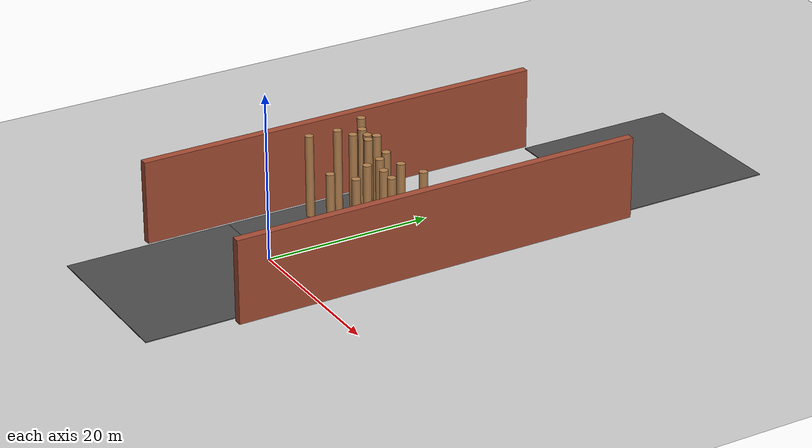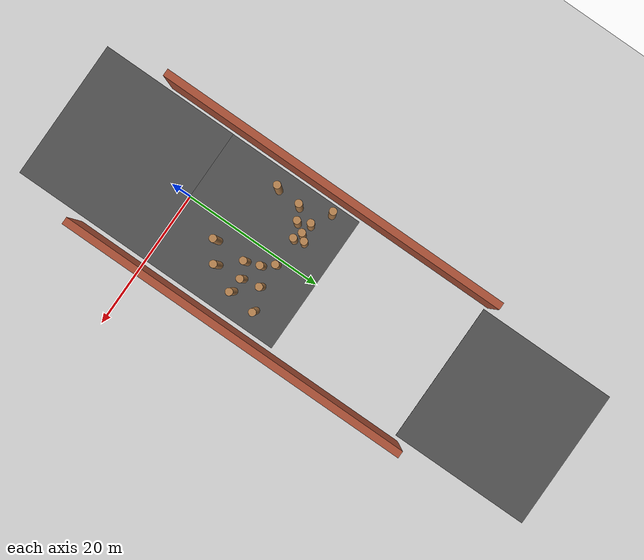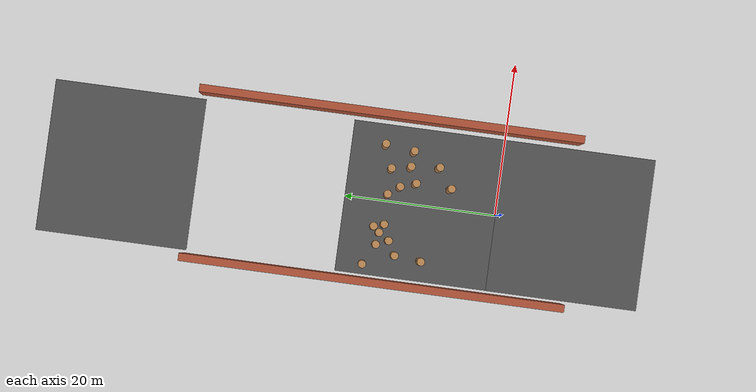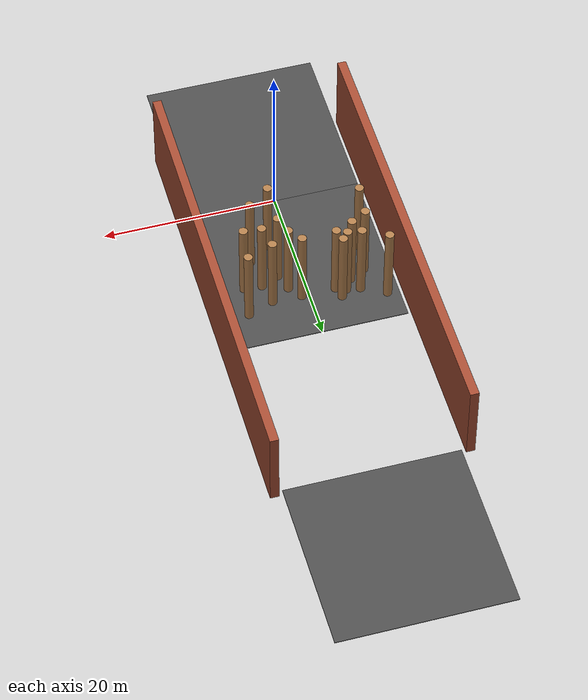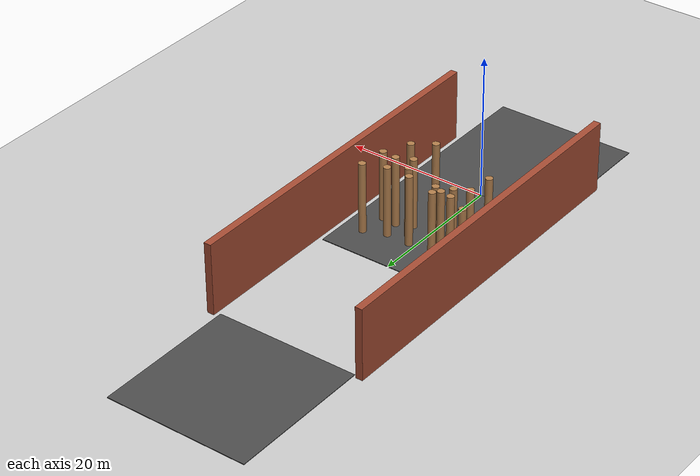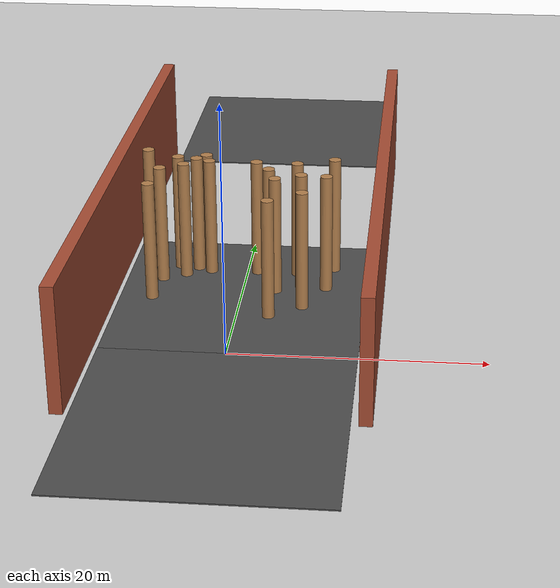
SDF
<sdf version="1.6">
 <world name="default">
  <model name="ground_plane">
   <static>1</static>
   <link name="link">
    <collision name="collision">
     <geometry><plane><normal>0 0 1</normal><size>100 100</size></plane></geometry>
     <surface><friction><ode><mu>100</mu><mu2>50</mu2></ode></friction></surface>
    </collision>
    <visual name="visual">
     <cast_shadows>0</cast_shadows>
     <geometry><plane><normal>0 0 1</normal><size>100 100</size></plane></geometry>
     <material>
      <script><uri>file://media/materials/scripts/gazebo.material</uri><name>Gazebo/Grey</name></script>
     </material>
    </visual>
   </link>
  </model>
  <model name="asphalt_plane_1">
   <static>1</static>
   <link name="link">
    <collision name="collision"><geometry><box><size>20 20 0.1</size></box></geometry></collision>
    <visual name="visual">
     <cast_shadows>0</cast_shadows>
     <geometry><box><size>20 20 0.1</size></box></geometry>
     <material>
      <script>
       <uri>model://asphalt_plane/materials/scripts</uri>
       <uri>model://asphalt_plane/materials/textures</uri>
       <name>vrc/asphalt</name>
      </script>
     </material>
    </visual>
   </link>
   <pose>0.098004 9.97829 0 0 -0 0</pose>
  </model>
  <model name="asphalt_plane_3">
   <static>1</static>
   <link name="link">
    <collision name="collision"><geometry><box><size>20 20 0.1</size></box></geometry></collision>
    <visual name="visual">
     <cast_shadows>0</cast_shadows>
     <geometry><box><size>20 20 0.1</size></box></geometry>
     <material>
      <script>
       <uri>model://asphalt_plane/materials/scripts</uri>
       <uri>model://asphalt_plane/materials/textures</uri>
       <name>vrc/asphalt</name>
      </script>
     </material>
    </visual>
   </link>
   <pose>0.085062 -9.98607 0 0 -0 0</pose>
  </model>
  <model name="test_1">
   <link name="link_0_clone_0_clone_5_clone_12_clone_0">
    <pose>-5.63702 -1.67107 0.043478 0 -0 6e-06</pose>
    <inertial>
     <mass>1000</mass>
     <inertia><ixx>0.145833</ixx><ixy>0</ixy><ixz>0</ixz><iyy>0.145833</iyy><iyz>0</iyz><izz>0.125</izz></inertia>
    </inertial>
    <visual name="visual">
     <pose>0 0 4.5 0 -0 0</pose>
     <geometry><cylinder><radius>0.5</radius><length>10</length></cylinder></geometry>
     <material>
      <lighting>1</lighting>
      <script><uri>file://media/materials/scripts/gazebo.material</uri><name>Gazebo/WoodFloor</name></script>
      <ambient>0.3 0.3 0.3 1</ambient>
      <diffuse>0.7 0.7 0.7 1</diffuse>
      <specular>0.01 0.01 0.01 1</specular>
      <emissive>0 0 0 1</emissive>
      <shader type="vertex"><normal_map>__default__</normal_map></shader>
     </material>
    </visual>
    <collision name="collision">
     <pose>0 0 4.5 0 -0 0</pose>
     <geometry><cylinder><radius>0.5</radius><length>10</length></cylinder></geometry>
     <surface>
      <friction>
       <ode><mu>1</mu><mu2>1</mu2><fdir1>0 0 0</fdir1><slip1>0</slip1><slip2>0</slip2></ode>
       <torsional>
        <coefficient>1</coefficient>
        <patch_radius>0</patch_radius>
        <surface_radius>0</surface_radius>
        <use_patch_radius>1</use_patch_radius>
        <ode><slip>0</slip></ode>
       </torsional>
      </friction>
      <bounce><restitution_coefficient>0</restitution_coefficient><threshold>1e+06</threshold></bounce>
      <contact>
       <collide_without_contact>0</collide_without_contact>
       <collide_without_contact_bitmask>1</collide_without_contact_bitmask>
       <collide_bitmask>1</collide_bitmask>
       <ode>
        <soft_cfm>0</soft_cfm>
        <soft_erp>0.2</soft_erp>
        <kp>1e+13</kp>
        <kd>1</kd>
        <max_vel>0.01</max_vel>
        <min_depth>0</min_depth>
       </ode>
       <bullet>
        <split_impulse>1</split_impulse>
        <split_impulse_penetration_threshold>-0.01</split_impulse_penetration_threshold>
        <soft_cfm>0</soft_cfm>
        <soft_erp>0.2</soft_erp>
        <kp>1e+13</kp>
        <kd>1</kd>
       </bullet>
      </contact>
     </surface>
    </collision>
   </link>
   <link name="link_0_clone_0_clone_5_clone_12_clone_16">
    <pose>6.39301 -5.99796 0.043478 0 -0 6e-06</pose>
    <inertial>
     <mass>1000</mass>
     <inertia><ixx>0.145833</ixx><ixy>0</ixy><ixz>0</ixz><iyy>0.145833</iyy><iyz>0</iyz><izz>0.125</izz></inertia>
    </inertial>
    <visual name="visual">
     <pose>0 0 4.5 0 -0 0</pose>
     <geometry><cylinder><radius>0.5</radius><length>10</length></cylinder></geometry>
     <material>
      <lighting>1</lighting>
      <script><uri>file://media/materials/scripts/gazebo.material</uri><name>Gazebo/WoodFloor</name></script>
      <ambient>0.3 0.3 0.3 1</ambient>
      <diffuse>0.7 0.7 0.7 1</diffuse>
      <specular>0.01 0.01 0.01 1</specular>
      <emissive>0 0 0 1</emissive>
      <shader type="vertex"><normal_map>__default__</normal_map></shader>
     </material>
    </visual>
    <collision name="collision">
     <pose>0 0 4.5 0 -0 0</pose>
     <geometry><cylinder><radius>0.5</radius><length>10</length></cylinder></geometry>
     <surface>
      <friction>
       <ode><mu>1</mu><mu2>1</mu2><fdir1>0 0 0</fdir1><slip1>0</slip1><slip2>0</slip2></ode>
       <torsional>
        <coefficient>1</coefficient>
        <patch_radius>0</patch_radius>
        <surface_radius>0</surface_radius>
        <use_patch_radius>1</use_patch_radius>
        <ode><slip>0</slip></ode>
       </torsional>
      </friction>
      <bounce><restitution_coefficient>0</restitution_coefficient><threshold>1e+06</threshold></bounce>
      <contact>
       <collide_without_contact>0</collide_without_contact>
       <collide_without_contact_bitmask>1</collide_without_contact_bitmask>
       <collide_bitmask>1</collide_bitmask>
       <ode>
        <soft_cfm>0</soft_cfm>
        <soft_erp>0.2</soft_erp>
        <kp>1e+13</kp>
        <kd>1</kd>
        <max_vel>0.01</max_vel>
        <min_depth>0</min_depth>
       </ode>
       <bullet>
        <split_impulse>1</split_impulse>
        <split_impulse_penetration_threshold>-0.01</split_impulse_penetration_threshold>
        <soft_cfm>0</soft_cfm>
        <soft_erp>0.2</soft_erp>
        <kp>1e+13</kp>
        <kd>1</kd>
       </bullet>
      </contact>
     </surface>
    </collision>
   </link>
   <link name="link_0_clone_0_clone_5_clone_12_clone_17">
    <pose>3.84972 -7.82037 0.043478 0 -0 6e-06</pose>
    <inertial>
     <mass>1000</mass>
     <inertia><ixx>0.145833</ixx><ixy>0</ixy><ixz>0</ixz><iyy>0.145833</iyy><iyz>0</iyz><izz>0.125</izz></inertia>
    </inertial>
    <visual name="visual">
     <pose>0 0 4.5 0 -0 0</pose>
     <geometry><cylinder><radius>0.5</radius><length>10</length></cylinder></geometry>
     <material>
      <lighting>1</lighting>
      <script><uri>file://media/materials/scripts/gazebo.material</uri><name>Gazebo/WoodFloor</name></script>
      <ambient>0.3 0.3 0.3 1</ambient>
      <diffuse>0.7 0.7 0.7 1</diffuse>
      <specular>0.01 0.01 0.01 1</specular>
      <emissive>0 0 0 1</emissive>
      <shader type="vertex"><normal_map>__default__</normal_map></shader>
     </material>
    </visual>
    <collision name="collision">
     <pose>0 0 4.5 0 -0 0</pose>
     <geometry><cylinder><radius>0.5</radius><length>10</length></cylinder></geometry>
     <surface>
      <friction>
       <ode><mu>1</mu><mu2>1</mu2><fdir1>0 0 0</fdir1><slip1>0</slip1><slip2>0</slip2></ode>
       <torsional>
        <coefficient>1</coefficient>
        <patch_radius>0</patch_radius>
        <surface_radius>0</surface_radius>
        <use_patch_radius>1</use_patch_radius>
        <ode><slip>0</slip></ode>
       </torsional>
      </friction>
      <bounce><restitution_coefficient>0</restitution_coefficient><threshold>1e+06</threshold></bounce>
      <contact>
       <collide_without_contact>0</collide_without_contact>
       <collide_without_contact_bitmask>1</collide_without_contact_bitmask>
       <collide_bitmask>1</collide_bitmask>
       <ode>
        <soft_cfm>0</soft_cfm>
        <soft_erp>0.2</soft_erp>
        <kp>1e+13</kp>
        <kd>1</kd>
        <max_vel>0.01</max_vel>
        <min_depth>0</min_depth>
       </ode>
       <bullet>
        <split_impulse>1</split_impulse>
        <split_impulse_penetration_threshold>-0.01</split_impulse_penetration_threshold>
        <soft_cfm>0</soft_cfm>
        <soft_erp>0.2</soft_erp>
        <kp>1e+13</kp>
        <kd>1</kd>
       </bullet>
      </contact>
     </surface>
    </collision>
   </link>
   <link name="link_0_clone_0_clone_5_clone_12_clone_2">
    <pose>5.48812 0.177483 0.043478 0 -0 6e-06</pose>
    <inertial>
     <mass>1000</mass>
     <inertia><ixx>0.145833</ixx><ixy>0</ixy><ixz>0</ixz><iyy>0.145833</iyy><iyz>0</iyz><izz>0.125</izz></inertia>
    </inertial>
    <visual name="visual">
     <pose>0 0 4.5 0 -0 0</pose>
     <geometry><cylinder><radius>0.5</radius><length>10</length></cylinder></geometry>
     <material>
      <lighting>1</lighting>
      <script><uri>file://media/materials/scripts/gazebo.material</uri><name>Gazebo/WoodFloor</name></script>
      <ambient>0.3 0.3 0.3 1</ambient>
      <diffuse>0.7 0.7 0.7 1</diffuse>
      <specular>0.01 0.01 0.01 1</specular>
      <emissive>0 0 0 1</emissive>
      <shader type="vertex"><normal_map>__default__</normal_map></shader>
     </material>
    </visual>
    <collision name="collision">
     <pose>0 0 4.5 0 -0 0</pose>
     <geometry><cylinder><radius>0.5</radius><length>10</length></cylinder></geometry>
     <surface>
      <friction>
       <ode><mu>1</mu><mu2>1</mu2><fdir1>0 0 0</fdir1><slip1>0</slip1><slip2>0</slip2></ode>
       <torsional>
        <coefficient>1</coefficient>
        <patch_radius>0</patch_radius>
        <surface_radius>0</surface_radius>
        <use_patch_radius>1</use_patch_radius>
        <ode><slip>0</slip></ode>
       </torsional>
      </friction>
      <bounce><restitution_coefficient>0</restitution_coefficient><threshold>1e+06</threshold></bounce>
      <contact>
       <collide_without_contact>0</collide_without_contact>
       <collide_without_contact_bitmask>1</collide_without_contact_bitmask>
       <collide_bitmask>1</collide_bitmask>
       <ode>
        <soft_cfm>0</soft_cfm>
        <soft_erp>0.2</soft_erp>
        <kp>1e+13</kp>
        <kd>1</kd>
        <max_vel>0.01</max_vel>
        <min_depth>0</min_depth>
       </ode>
       <bullet>
        <split_impulse>1</split_impulse>
        <split_impulse_penetration_threshold>-0.01</split_impulse_penetration_threshold>
        <soft_cfm>0</soft_cfm>
        <soft_erp>0.2</soft_erp>
        <kp>1e+13</kp>
        <kd>1</kd>
       </bullet>
      </contact>
     </surface>
    </collision>
   </link>
   <link name="link_0_clone_0_clone_5_clone_12_clone_4">
    <pose>2.11592 0.24078 0.043478 0 -0 6e-06</pose>
    <inertial>
     <mass>1000</mass>
     <inertia><ixx>0.145833</ixx><ixy>0</ixy><ixz>0</ixz><iyy>0.145833</iyy><iyz>0</iyz><izz>0.125</izz></inertia>
    </inertial>
    <visual name="visual">
     <pose>0 0 4.5 0 -0 0</pose>
     <geometry><cylinder><radius>0.5</radius><length>10</length></cylinder></geometry>
     <material>
      <lighting>1</lighting>
      <script><uri>file://media/materials/scripts/gazebo.material</uri><name>Gazebo/WoodFloor</name></script>
      <ambient>0.3 0.3 0.3 1</ambient>
      <diffuse>0.7 0.7 0.7 1</diffuse>
      <specular>0.01 0.01 0.01 1</specular>
      <emissive>0 0 0 1</emissive>
      <shader type="vertex"><normal_map>__default__</normal_map></shader>
     </material>
    </visual>
    <collision name="collision">
     <pose>0 0 4.5 0 -0 0</pose>
     <geometry><cylinder><radius>0.5</radius><length>10</length></cylinder></geometry>
     <surface>
      <friction>
       <ode><mu>1</mu><mu2>1</mu2><fdir1>0 0 0</fdir1><slip1>0</slip1><slip2>0</slip2></ode>
       <torsional>
        <coefficient>1</coefficient>
        <patch_radius>0</patch_radius>
        <surface_radius>0</surface_radius>
        <use_patch_radius>1</use_patch_radius>
        <ode><slip>0</slip></ode>
       </torsional>
      </friction>
      <bounce><restitution_coefficient>0</restitution_coefficient><threshold>1e+06</threshold></bounce>
      <contact>
       <collide_without_contact>0</collide_without_contact>
       <collide_without_contact_bitmask>1</collide_without_contact_bitmask>
       <collide_bitmask>1</collide_bitmask>
       <ode>
        <soft_cfm>0</soft_cfm>
        <soft_erp>0.2</soft_erp>
        <kp>1e+13</kp>
        <kd>1</kd>
        <max_vel>0.01</max_vel>
        <min_depth>0</min_depth>
       </ode>
       <bullet>
        <split_impulse>1</split_impulse>
        <split_impulse_penetration_threshold>-0.01</split_impulse_penetration_threshold>
        <soft_cfm>0</soft_cfm>
        <soft_erp>0.2</soft_erp>
        <kp>1e+13</kp>
        <kd>1</kd>
       </bullet>
      </contact>
     </surface>
    </collision>
   </link>
   <link name="link_0_clone_0_clone_5_clone_12_clone_4_clone">
    <pose>-4.51817 0.912331 0.043478 0 -0 9e-06</pose>
    <inertial>
     <mass>1000</mass>
     <inertia><ixx>0.145833</ixx><ixy>0</ixy><ixz>0</ixz><iyy>0.145833</iyy><iyz>0</iyz><izz>0.125</izz></inertia>
    </inertial>
    <visual name="visual">
     <pose>0 0 4.5 0 -0 0</pose>
     <geometry><cylinder><radius>0.5</radius><length>10</length></cylinder></geometry>
     <material>
      <lighting>1</lighting>
      <script><uri>file://media/materials/scripts/gazebo.material</uri><name>Gazebo/WoodFloor</name></script>
      <ambient>0.3 0.3 0.3 1</ambient>
      <diffuse>0.7 0.7 0.7 1</diffuse>
      <specular>0.01 0.01 0.01 1</specular>
      <emissive>0 0 0 1</emissive>
      <shader type="vertex"><normal_map>__default__</normal_map></shader>
     </material>
    </visual>
    <collision name="collision">
     <pose>0 0 4.5 0 -0 0</pose>
     <geometry><cylinder><radius>0.5</radius><length>10</length></cylinder></geometry>
     <surface>
      <friction>
       <ode><mu>1</mu><mu2>1</mu2><fdir1>0 0 0</fdir1><slip1>0</slip1><slip2>0</slip2></ode>
       <torsional>
        <coefficient>1</coefficient>
        <patch_radius>0</patch_radius>
        <surface_radius>0</surface_radius>
        <use_patch_radius>1</use_patch_radius>
        <ode><slip>0</slip></ode>
       </torsional>
      </friction>
      <bounce><restitution_coefficient>0</restitution_coefficient><threshold>1e+06</threshold></bounce>
      <contact>
       <collide_without_contact>0</collide_without_contact>
       <collide_without_contact_bitmask>1</collide_without_contact_bitmask>
       <collide_bitmask>1</collide_bitmask>
       <ode>
        <soft_cfm>0</soft_cfm>
        <soft_erp>0.2</soft_erp>
        <kp>1e+13</kp>
        <kd>1</kd>
        <max_vel>0.01</max_vel>
        <min_depth>0</min_depth>
       </ode>
       <bullet>
        <split_impulse>1</split_impulse>
        <split_impulse_penetration_threshold>-0.01</split_impulse_penetration_threshold>
        <soft_cfm>0</soft_cfm>
        <soft_erp>0.2</soft_erp>
        <kp>1e+13</kp>
        <kd>1</kd>
       </bullet>
      </contact>
     </surface>
    </collision>
   </link>
   <link name="link_0_clone_0_clone_5_clone_12_clone_4_clone_0">
    <pose>-2.93633 0.683647 0.043478 0 -0 9e-06</pose>
    <inertial>
     <mass>1000</mass>
     <inertia><ixx>0.145833</ixx><ixy>0</ixy><ixz>0</ixz><iyy>0.145833</iyy><iyz>0</iyz><izz>0.125</izz></inertia>
    </inertial>
    <visual name="visual">
     <pose>0 0 4.5 0 -0 0</pose>
     <geometry><cylinder><radius>0.5</radius><length>10</length></cylinder></geometry>
     <material>
      <lighting>1</lighting>
      <script><uri>file://media/materials/scripts/gazebo.material</uri><name>Gazebo/WoodFloor</name></script>
      <ambient>0.3 0.3 0.3 1</ambient>
      <diffuse>0.7 0.7 0.7 1</diffuse>
      <specular>0.01 0.01 0.01 1</specular>
      <emissive>0 0 0 1</emissive>
      <shader type="vertex"><normal_map>__default__</normal_map></shader>
     </material>
    </visual>
    <collision name="collision">
     <pose>0 0 4.5 0 -0 0</pose>
     <geometry><cylinder><radius>0.5</radius><length>10</length></cylinder></geometry>
     <surface>
      <friction>
       <ode><mu>1</mu><mu2>1</mu2><fdir1>0 0 0</fdir1><slip1>0</slip1><slip2>0</slip2></ode>
       <torsional>
        <coefficient>1</coefficient>
        <patch_radius>0</patch_radius>
        <surface_radius>0</surface_radius>
        <use_patch_radius>1</use_patch_radius>
        <ode><slip>0</slip></ode>
       </torsional>
      </friction>
      <bounce><restitution_coefficient>0</restitution_coefficient><threshold>1e+06</threshold></bounce>
      <contact>
       <collide_without_contact>0</collide_without_contact>
       <collide_without_contact_bitmask>1</collide_without_contact_bitmask>
       <collide_bitmask>1</collide_bitmask>
       <ode>
        <soft_cfm>0</soft_cfm>
        <soft_erp>0.2</soft_erp>
        <kp>1e+13</kp>
        <kd>1</kd>
        <max_vel>0.01</max_vel>
        <min_depth>0</min_depth>
       </ode>
       <bullet>
        <split_impulse>1</split_impulse>
        <split_impulse_penetration_threshold>-0.01</split_impulse_penetration_threshold>
        <soft_cfm>0</soft_cfm>
        <soft_erp>0.2</soft_erp>
        <kp>1e+13</kp>
        <kd>1</kd>
       </bullet>
      </contact>
     </surface>
    </collision>
   </link>
   <link name="link_0_clone_0_clone_5_clone_12_clone_4_clone_1">
    <pose>-3.82497 -0.669509 0.043478 0 -0 9e-06</pose>
    <inertial>
     <mass>1000</mass>
     <inertia><ixx>0.145833</ixx><ixy>0</ixy><ixz>0</ixz><iyy>0.145833</iyy><iyz>0</iyz><izz>0.125</izz></inertia>
    </inertial>
    <visual name="visual">
     <pose>0 0 4.5 0 -0 0</pose>
     <geometry><cylinder><radius>0.5</radius><length>10</length></cylinder></geometry>
     <material>
      <lighting>1</lighting>
      <script><uri>file://media/materials/scripts/gazebo.material</uri><name>Gazebo/WoodFloor</name></script>
      <ambient>0.3 0.3 0.3 1</ambient>
      <diffuse>0.7 0.7 0.7 1</diffuse>
      <specular>0.01 0.01 0.01 1</specular>
      <emissive>0 0 0 1</emissive>
      <shader type="vertex"><normal_map>__default__</normal_map></shader>
     </material>
    </visual>
    <collision name="collision">
     <pose>0 0 4.5 0 -0 0</pose>
     <geometry><cylinder><radius>0.5</radius><length>10</length></cylinder></geometry>
     <surface>
      <friction>
       <ode><mu>1</mu><mu2>1</mu2><fdir1>0 0 0</fdir1><slip1>0</slip1><slip2>0</slip2></ode>
       <torsional>
        <coefficient>1</coefficient>
        <patch_radius>0</patch_radius>
        <surface_radius>0</surface_radius>
        <use_patch_radius>1</use_patch_radius>
        <ode><slip>0</slip></ode>
       </torsional>
      </friction>
      <bounce><restitution_coefficient>0</restitution_coefficient><threshold>1e+06</threshold></bounce>
      <contact>
       <collide_without_contact>0</collide_without_contact>
       <collide_without_contact_bitmask>1</collide_without_contact_bitmask>
       <collide_bitmask>1</collide_bitmask>
       <ode>
        <soft_cfm>0</soft_cfm>
        <soft_erp>0.2</soft_erp>
        <kp>1e+13</kp>
        <kd>1</kd>
        <max_vel>0.01</max_vel>
        <min_depth>0</min_depth>
       </ode>
       <bullet>
        <split_impulse>1</split_impulse>
        <split_impulse_penetration_threshold>-0.01</split_impulse_penetration_threshold>
        <soft_cfm>0</soft_cfm>
        <soft_erp>0.2</soft_erp>
        <kp>1e+13</kp>
        <kd>1</kd>
       </bullet>
      </contact>
     </surface>
    </collision>
   </link>
   <link name="link_0_clone_0_clone_5_clone_12_clone_4_clone_2">
    <pose>-2.20736 1.49494 0.043478 0 -0 9e-06</pose>
    <inertial>
     <mass>1000</mass>
     <inertia><ixx>0.145833</ixx><ixy>0</ixy><ixz>0</ixz><iyy>0.145833</iyy><iyz>0</iyz><izz>0.125</izz></inertia>
    </inertial>
    <visual name="visual">
     <pose>0 0 4.5 0 -0 0</pose>
     <geometry><cylinder><radius>0.5</radius><length>10</length></cylinder></geometry>
     <material>
      <lighting>1</lighting>
      <script><uri>file://media/materials/scripts/gazebo.material</uri><name>Gazebo/WoodFloor</name></script>
      <ambient>0.3 0.3 0.3 1</ambient>
      <diffuse>0.7 0.7 0.7 1</diffuse>
      <specular>0.01 0.01 0.01 1</specular>
      <emissive>0 0 0 1</emissive>
      <shader type="vertex"><normal_map>__default__</normal_map></shader>
     </material>
    </visual>
    <collision name="collision">
     <pose>0 0 4.5 0 -0 0</pose>
     <geometry><cylinder><radius>0.5</radius><length>10</length></cylinder></geometry>
     <surface>
      <friction>
       <ode><mu>1</mu><mu2>1</mu2><fdir1>0 0 0</fdir1><slip1>0</slip1><slip2>0</slip2></ode>
       <torsional>
        <coefficient>1</coefficient>
        <patch_radius>0</patch_radius>
        <surface_radius>0</surface_radius>
        <use_patch_radius>1</use_patch_radius>
        <ode><slip>0</slip></ode>
       </torsional>
      </friction>
      <bounce><restitution_coefficient>0</restitution_coefficient><threshold>1e+06</threshold></bounce>
      <contact>
       <collide_without_contact>0</collide_without_contact>
       <collide_without_contact_bitmask>1</collide_without_contact_bitmask>
       <collide_bitmask>1</collide_bitmask>
       <ode>
        <soft_cfm>0</soft_cfm>
        <soft_erp>0.2</soft_erp>
        <kp>1e+13</kp>
        <kd>1</kd>
        <max_vel>0.01</max_vel>
        <min_depth>0</min_depth>
       </ode>
       <bullet>
        <split_impulse>1</split_impulse>
        <split_impulse_penetration_threshold>-0.01</split_impulse_penetration_threshold>
        <soft_cfm>0</soft_cfm>
        <soft_erp>0.2</soft_erp>
        <kp>1e+13</kp>
        <kd>1</kd>
       </bullet>
      </contact>
     </surface>
    </collision>
   </link>
   <link name="link_0_clone_0_clone_5_clone_12_clone_4_clone_22">
    <pose>6.01743 -2.30899 0.043478 0 -0 9e-06</pose>
    <inertial>
     <mass>1000</mass>
     <inertia><ixx>0.145833</ixx><ixy>0</ixy><ixz>0</ixz><iyy>0.145833</iyy><iyz>0</iyz><izz>0.125</izz></inertia>
    </inertial>
    <visual name="visual">
     <pose>0 0 4.5 0 -0 0</pose>
     <geometry><cylinder><radius>0.5</radius><length>10</length></cylinder></geometry>
     <material>
      <lighting>1</lighting>
      <script><uri>file://media/materials/scripts/gazebo.material</uri><name>Gazebo/WoodFloor</name></script>
      <ambient>0.3 0.3 0.3 1</ambient>
      <diffuse>0.7 0.7 0.7 1</diffuse>
      <specular>0.01 0.01 0.01 1</specular>
      <emissive>0 0 0 1</emissive>
      <shader type="vertex"><normal_map>__default__</normal_map></shader>
     </material>
    </visual>
    <collision name="collision">
     <pose>0 0 4.5 0 -0 0</pose>
     <geometry><cylinder><radius>0.5</radius><length>10</length></cylinder></geometry>
     <surface>
      <friction>
       <ode><mu>1</mu><mu2>1</mu2><fdir1>0 0 0</fdir1><slip1>0</slip1><slip2>0</slip2></ode>
       <torsional>
        <coefficient>1</coefficient>
        <patch_radius>0</patch_radius>
        <surface_radius>0</surface_radius>
        <use_patch_radius>1</use_patch_radius>
        <ode><slip>0</slip></ode>
       </torsional>
      </friction>
      <bounce><restitution_coefficient>0</restitution_coefficient><threshold>1e+06</threshold></bounce>
      <contact>
       <collide_without_contact>0</collide_without_contact>
       <collide_without_contact_bitmask>1</collide_without_contact_bitmask>
       <collide_bitmask>1</collide_bitmask>
       <ode>
        <soft_cfm>0</soft_cfm>
        <soft_erp>0.2</soft_erp>
        <kp>1e+13</kp>
        <kd>1</kd>
        <max_vel>0.01</max_vel>
        <min_depth>0</min_depth>
       </ode>
       <bullet>
        <split_impulse>1</split_impulse>
        <split_impulse_penetration_threshold>-0.01</split_impulse_penetration_threshold>
        <soft_cfm>0</soft_cfm>
        <soft_erp>0.2</soft_erp>
        <kp>1e+13</kp>
        <kd>1</kd>
       </bullet>
      </contact>
     </surface>
    </collision>
   </link>
   <link name="link_0_clone_0_clone_5_clone_12_clone_4_clone_3">
    <pose>-1.80276 0.177998 0.043478 0 -0 9e-06</pose>
    <inertial>
     <mass>1000</mass>
     <inertia><ixx>0.145833</ixx><ixy>0</ixy><ixz>0</ixz><iyy>0.145833</iyy><iyz>0</iyz><izz>0.125</izz></inertia>
    </inertial>
    <visual name="visual">
     <pose>0 0 4.5 0 -0 0</pose>
     <geometry><cylinder><radius>0.5</radius><length>10</length></cylinder></geometry>
     <material>
      <lighting>1</lighting>
      <script><uri>file://media/materials/scripts/gazebo.material</uri><name>Gazebo/WoodFloor</name></script>
      <ambient>0.3 0.3 0.3 1</ambient>
      <diffuse>0.7 0.7 0.7 1</diffuse>
      <specular>0.01 0.01 0.01 1</specular>
      <emissive>0 0 0 1</emissive>
      <shader type="vertex"><normal_map>__default__</normal_map></shader>
     </material>
    </visual>
    <collision name="collision">
     <pose>0 0 4.5 0 -0 0</pose>
     <geometry><cylinder><radius>0.5</radius><length>10</length></cylinder></geometry>
     <surface>
      <friction>
       <ode><mu>1</mu><mu2>1</mu2><fdir1>0 0 0</fdir1><slip1>0</slip1><slip2>0</slip2></ode>
       <torsional>
        <coefficient>1</coefficient>
        <patch_radius>0</patch_radius>
        <surface_radius>0</surface_radius>
        <use_patch_radius>1</use_patch_radius>
        <ode><slip>0</slip></ode>
       </torsional>
      </friction>
      <bounce><restitution_coefficient>0</restitution_coefficient><threshold>1e+06</threshold></bounce>
      <contact>
       <collide_without_contact>0</collide_without_contact>
       <collide_without_contact_bitmask>1</collide_without_contact_bitmask>
       <collide_bitmask>1</collide_bitmask>
       <ode>
        <soft_cfm>0</soft_cfm>
        <soft_erp>0.2</soft_erp>
        <kp>1e+13</kp>
        <kd>1</kd>
        <max_vel>0.01</max_vel>
        <min_depth>0</min_depth>
       </ode>
       <bullet>
        <split_impulse>1</split_impulse>
        <split_impulse_penetration_threshold>-0.01</split_impulse_penetration_threshold>
        <soft_cfm>0</soft_cfm>
        <soft_erp>0.2</soft_erp>
        <kp>1e+13</kp>
        <kd>1</kd>
       </bullet>
      </contact>
     </surface>
    </collision>
   </link>
   <link name="link_0_clone_0_clone_5_clone_12_clone_4_clone_4">
    <pose>3.27394 -1.24679 0.043478 0 -0 9e-06</pose>
    <inertial>
     <mass>1000</mass>
     <inertia><ixx>0.145833</ixx><ixy>0</ixy><ixz>0</ixz><iyy>0.145833</iyy><iyz>0</iyz><izz>0.125</izz></inertia>
    </inertial>
    <visual name="visual">
     <pose>0 0 4.5 0 -0 0</pose>
     <geometry><cylinder><radius>0.5</radius><length>10</length></cylinder></geometry>
     <material>
      <lighting>1</lighting>
      <script><uri>file://media/materials/scripts/gazebo.material</uri><name>Gazebo/WoodFloor</name></script>
      <ambient>0.3 0.3 0.3 1</ambient>
      <diffuse>0.7 0.7 0.7 1</diffuse>
      <specular>0.01 0.01 0.01 1</specular>
      <emissive>0 0 0 1</emissive>
      <shader type="vertex"><normal_map>__default__</normal_map></shader>
     </material>
    </visual>
    <collision name="collision">
     <pose>0 0 4.5 0 -0 0</pose>
     <geometry><cylinder><radius>0.5</radius><length>10</length></cylinder></geometry>
     <surface>
      <friction>
       <ode><mu>1</mu><mu2>1</mu2><fdir1>0 0 0</fdir1><slip1>0</slip1><slip2>0</slip2></ode>
       <torsional>
        <coefficient>1</coefficient>
        <patch_radius>0</patch_radius>
        <surface_radius>0</surface_radius>
        <use_patch_radius>1</use_patch_radius>
        <ode><slip>0</slip></ode>
       </torsional>
      </friction>
      <bounce><restitution_coefficient>0</restitution_coefficient><threshold>1e+06</threshold></bounce>
      <contact>
       <collide_without_contact>0</collide_without_contact>
       <collide_without_contact_bitmask>1</collide_without_contact_bitmask>
       <collide_bitmask>1</collide_bitmask>
       <ode>
        <soft_cfm>0</soft_cfm>
        <soft_erp>0.2</soft_erp>
        <kp>1e+13</kp>
        <kd>1</kd>
        <max_vel>0.01</max_vel>
        <min_depth>0</min_depth>
       </ode>
       <bullet>
        <split_impulse>1</split_impulse>
        <split_impulse_penetration_threshold>-0.01</split_impulse_penetration_threshold>
        <soft_cfm>0</soft_cfm>
        <soft_erp>0.2</soft_erp>
        <kp>1e+13</kp>
        <kd>1</kd>
       </bullet>
      </contact>
     </surface>
    </collision>
   </link>
   <link name="link_0_clone_0_clone_5_clone_12_clone_4_clone_9">
    <pose>-7.2512 2.32349 0.043478 0 -0 9e-06</pose>
    <inertial>
     <mass>1000</mass>
     <inertia><ixx>0.145833</ixx><ixy>0</ixy><ixz>0</ixz><iyy>0.145833</iyy><iyz>0</iyz><izz>0.125</izz></inertia>
    </inertial>
    <visual name="visual">
     <pose>0 0 4.5 0 -0 0</pose>
     <geometry><cylinder><radius>0.5</radius><length>10</length></cylinder></geometry>
     <material>
      <lighting>1</lighting>
      <script><uri>file://media/materials/scripts/gazebo.material</uri><name>Gazebo/WoodFloor</name></script>
      <ambient>0.3 0.3 0.3 1</ambient>
      <diffuse>0.7 0.7 0.7 1</diffuse>
      <specular>0.01 0.01 0.01 1</specular>
      <emissive>0 0 0 1</emissive>
      <shader type="vertex"><normal_map>__default__</normal_map></shader>
     </material>
    </visual>
    <collision name="collision">
     <pose>0 0 4.5 0 -0 0</pose>
     <geometry><cylinder><radius>0.5</radius><length>10</length></cylinder></geometry>
     <surface>
      <friction>
       <ode><mu>1</mu><mu2>1</mu2><fdir1>0 0 0</fdir1><slip1>0</slip1><slip2>0</slip2></ode>
       <torsional>
        <coefficient>1</coefficient>
        <patch_radius>0</patch_radius>
        <surface_radius>0</surface_radius>
        <use_patch_radius>1</use_patch_radius>
        <ode><slip>0</slip></ode>
       </torsional>
      </friction>
      <bounce><restitution_coefficient>0</restitution_coefficient><threshold>1e+06</threshold></bounce>
      <contact>
       <collide_without_contact>0</collide_without_contact>
       <collide_without_contact_bitmask>1</collide_without_contact_bitmask>
       <collide_bitmask>1</collide_bitmask>
       <ode>
        <soft_cfm>0</soft_cfm>
        <soft_erp>0.2</soft_erp>
        <kp>1e+13</kp>
        <kd>1</kd>
        <max_vel>0.01</max_vel>
        <min_depth>0</min_depth>
       </ode>
       <bullet>
        <split_impulse>1</split_impulse>
        <split_impulse_penetration_threshold>-0.01</split_impulse_penetration_threshold>
        <soft_cfm>0</soft_cfm>
        <soft_erp>0.2</soft_erp>
        <kp>1e+13</kp>
        <kd>1</kd>
       </bullet>
      </contact>
     </surface>
    </collision>
   </link>
   <link name="link_0_clone_0_clone_5_clone_19_clone_24">
    <pose>-5.97869 -5.13561 0.043478 0 -0 6e-06</pose>
    <inertial>
     <mass>1000</mass>
     <inertia><ixx>0.145833</ixx><ixy>0</ixy><ixz>0</ixz><iyy>0.145833</iyy><iyz>0</iyz><izz>0.125</izz></inertia>
    </inertial>
    <visual name="visual">
     <pose>0 0 4.5 0 -0 0</pose>
     <geometry><cylinder><radius>0.5</radius><length>10</length></cylinder></geometry>
     <material>
      <lighting>1</lighting>
      <script><uri>file://media/materials/scripts/gazebo.material</uri><name>Gazebo/WoodFloor</name></script>
      <ambient>0.3 0.3 0.3 1</ambient>
      <diffuse>0.7 0.7 0.7 1</diffuse>
      <specular>0.01 0.01 0.01 1</specular>
      <emissive>0 0 0 1</emissive>
      <shader type="vertex"><normal_map>__default__</normal_map></shader>
     </material>
    </visual>
    <collision name="collision">
     <pose>0 0 4.5 0 -0 0</pose>
     <geometry><cylinder><radius>0.5</radius><length>10</length></cylinder></geometry>
     <surface>
      <friction>
       <ode><mu>1</mu><mu2>1</mu2><fdir1>0 0 0</fdir1><slip1>0</slip1><slip2>0</slip2></ode>
       <torsional>
        <coefficient>1</coefficient>
        <patch_radius>0</patch_radius>
        <surface_radius>0</surface_radius>
        <use_patch_radius>1</use_patch_radius>
        <ode><slip>0</slip></ode>
       </torsional>
      </friction>
      <bounce><restitution_coefficient>0</restitution_coefficient><threshold>1e+06</threshold></bounce>
      <contact>
       <collide_without_contact>0</collide_without_contact>
       <collide_without_contact_bitmask>1</collide_without_contact_bitmask>
       <collide_bitmask>1</collide_bitmask>
       <ode>
        <soft_cfm>0</soft_cfm>
        <soft_erp>0.2</soft_erp>
        <kp>1e+13</kp>
        <kd>1</kd>
        <max_vel>0.01</max_vel>
        <min_depth>0</min_depth>
       </ode>
       <bullet>
        <split_impulse>1</split_impulse>
        <split_impulse_penetration_threshold>-0.01</split_impulse_penetration_threshold>
        <soft_cfm>0</soft_cfm>
        <soft_erp>0.2</soft_erp>
        <kp>1e+13</kp>
        <kd>1</kd>
       </bullet>
      </contact>
     </surface>
    </collision>
   </link>
   <link name="link_0_clone_0_clone_5_clone_19_clone_32">
    <pose>8.50917 1.28403 0.043478 0 -0 6e-06</pose>
    <inertial>
     <mass>1000</mass>
     <inertia><ixx>0.145833</ixx><ixy>0</ixy><ixz>0</ixz><iyy>0.145833</iyy><iyz>0</iyz><izz>0.125</izz></inertia>
    </inertial>
    <visual name="visual">
     <pose>0 0 4.5 0 -0 0</pose>
     <geometry><cylinder><radius>0.5</radius><length>10</length></cylinder></geometry>
     <material>
      <lighting>1</lighting>
      <script><uri>file://media/materials/scripts/gazebo.material</uri><name>Gazebo/WoodFloor</name></script>
      <ambient>0.3 0.3 0.3 1</ambient>
      <diffuse>0.7 0.7 0.7 1</diffuse>
      <specular>0.01 0.01 0.01 1</specular>
      <emissive>0 0 0 1</emissive>
      <shader type="vertex"><normal_map>__default__</normal_map></shader>
     </material>
    </visual>
    <collision name="collision">
     <pose>0 0 4.5 0 -0 0</pose>
     <geometry><cylinder><radius>0.5</radius><length>10</length></cylinder></geometry>
     <surface>
      <friction>
       <ode><mu>1</mu><mu2>1</mu2><fdir1>0 0 0</fdir1><slip1>0</slip1><slip2>0</slip2></ode>
       <torsional>
        <coefficient>1</coefficient>
        <patch_radius>0</patch_radius>
        <surface_radius>0</surface_radius>
        <use_patch_radius>1</use_patch_radius>
        <ode><slip>0</slip></ode>
       </torsional>
      </friction>
      <bounce><restitution_coefficient>0</restitution_coefficient><threshold>1e+06</threshold></bounce>
      <contact>
       <collide_without_contact>0</collide_without_contact>
       <collide_without_contact_bitmask>1</collide_without_contact_bitmask>
       <collide_bitmask>1</collide_bitmask>
       <ode>
        <soft_cfm>0</soft_cfm>
        <soft_erp>0.2</soft_erp>
        <kp>1e+13</kp>
        <kd>1</kd>
        <max_vel>0.01</max_vel>
        <min_depth>0</min_depth>
       </ode>
       <bullet>
        <split_impulse>1</split_impulse>
        <split_impulse_penetration_threshold>-0.01</split_impulse_penetration_threshold>
        <soft_cfm>0</soft_cfm>
        <soft_erp>0.2</soft_erp>
        <kp>1e+13</kp>
        <kd>1</kd>
       </bullet>
      </contact>
     </surface>
    </collision>
   </link>
   <link name="link_0_clone_0_clone_5_clone_22">
    <pose>8.06962 -2.47589 0.043478 0 -0 3e-06</pose>
    <inertial>
     <mass>1000</mass>
     <inertia><ixx>0.145833</ixx><ixy>0</ixy><ixz>0</ixz><iyy>0.145833</iyy><iyz>0</iyz><izz>0.125</izz></inertia>
    </inertial>
    <visual name="visual">
     <pose>0 0 4.5 0 -0 0</pose>
     <geometry><cylinder><radius>0.5</radius><length>10</length></cylinder></geometry>
     <material>
      <lighting>1</lighting>
      <script><uri>file://media/materials/scripts/gazebo.material</uri><name>Gazebo/WoodFloor</name></script>
      <ambient>0.3 0.3 0.3 1</ambient>
      <diffuse>0.7 0.7 0.7 1</diffuse>
      <specular>0.01 0.01 0.01 1</specular>
      <emissive>0 0 0 1</emissive>
      <shader type="vertex"><normal_map>__default__</normal_map></shader>
     </material>
    </visual>
    <collision name="collision">
     <pose>0 0 4.5 0 -0 0</pose>
     <geometry><cylinder><radius>0.5</radius><length>10</length></cylinder></geometry>
     <surface>
      <friction>
       <ode><mu>1</mu><mu2>1</mu2><fdir1>0 0 0</fdir1><slip1>0</slip1><slip2>0</slip2></ode>
       <torsional>
        <coefficient>1</coefficient>
        <patch_radius>0</patch_radius>
        <surface_radius>0</surface_radius>
        <use_patch_radius>1</use_patch_radius>
        <ode><slip>0</slip></ode>
       </torsional>
      </friction>
      <bounce><restitution_coefficient>0</restitution_coefficient><threshold>1e+06</threshold></bounce>
      <contact>
       <collide_without_contact>0</collide_without_contact>
       <collide_without_contact_bitmask>1</collide_without_contact_bitmask>
       <collide_bitmask>1</collide_bitmask>
       <ode>
        <soft_cfm>0</soft_cfm>
        <soft_erp>0.2</soft_erp>
        <kp>1e+13</kp>
        <kd>1</kd>
        <max_vel>0.01</max_vel>
        <min_depth>0</min_depth>
       </ode>
       <bullet>
        <split_impulse>1</split_impulse>
        <split_impulse_penetration_threshold>-0.01</split_impulse_penetration_threshold>
        <soft_cfm>0</soft_cfm>
        <soft_erp>0.2</soft_erp>
        <kp>1e+13</kp>
        <kd>1</kd>
       </bullet>
      </contact>
     </surface>
    </collision>
   </link>
   <link name="link_0_clone_0_clone_5_clone_6_clone_20_clone">
    <pose>3.96296 -3.23891 0.043478 0 -0 9e-06</pose>
    <inertial>
     <mass>1000</mass>
     <inertia><ixx>0.145833</ixx><ixy>0</ixy><ixz>0</ixz><iyy>0.145833</iyy><iyz>0</iyz><izz>0.125</izz></inertia>
    </inertial>
    <visual name="visual">
     <pose>0 0 4.5 0 -0 0</pose>
     <geometry><cylinder><radius>0.5</radius><length>10</length></cylinder></geometry>
     <material>
      <lighting>1</lighting>
      <script><uri>file://media/materials/scripts/gazebo.material</uri><name>Gazebo/WoodFloor</name></script>
      <ambient>0.3 0.3 0.3 1</ambient>
      <diffuse>0.7 0.7 0.7 1</diffuse>
      <specular>0.01 0.01 0.01 1</specular>
      <emissive>0 0 0 1</emissive>
      <shader type="vertex"><normal_map>__default__</normal_map></shader>
     </material>
    </visual>
    <collision name="collision">
     <pose>0 0 4.5 0 -0 0</pose>
     <geometry><cylinder><radius>0.5</radius><length>10</length></cylinder></geometry>
     <surface>
      <friction>
       <ode><mu>1</mu><mu2>1</mu2><fdir1>0 0 0</fdir1><slip1>0</slip1><slip2>0</slip2></ode>
       <torsional>
        <coefficient>1</coefficient>
        <patch_radius>0</patch_radius>
        <surface_radius>0</surface_radius>
        <use_patch_radius>1</use_patch_radius>
        <ode><slip>0</slip></ode>
       </torsional>
      </friction>
      <bounce><restitution_coefficient>0</restitution_coefficient><threshold>1e+06</threshold></bounce>
      <contact>
       <collide_without_contact>0</collide_without_contact>
       <collide_without_contact_bitmask>1</collide_without_contact_bitmask>
       <collide_bitmask>1</collide_bitmask>
       <ode>
        <soft_cfm>0</soft_cfm>
        <soft_erp>0.2</soft_erp>
        <kp>1e+13</kp>
        <kd>1</kd>
        <max_vel>0.01</max_vel>
        <min_depth>0</min_depth>
       </ode>
       <bullet>
        <split_impulse>1</split_impulse>
        <split_impulse_penetration_threshold>-0.01</split_impulse_penetration_threshold>
        <soft_cfm>0</soft_cfm>
        <soft_erp>0.2</soft_erp>
        <kp>1e+13</kp>
        <kd>1</kd>
       </bullet>
      </contact>
     </surface>
    </collision>
   </link>
   <static>1</static>
   <pose>-1.27395 14.2468 0.506522 0 0 -3e-06</pose>
  </model>
  <model name="walls">
   <link name="link_0_clone">
    <pose>-10.7701 14.8158 5 0 -0 0</pose>
    <inertial>
     <mass>10000</mass>
     <inertia>
      <ixx>0.166667</ixx>
      <ixy>0</ixy>
      <ixz>0</ixz>
      <iyy>0.166667</iyy>
      <iyz>0</iyz>
      <izz>0.166667</izz>
     </inertia>
     <pose>0 0 5 0 -0 0</pose>
    </inertial>
    <visual name="visual">
     <geometry><box><size>1 50 10</size></box></geometry>
     <material>
      <lighting>1</lighting>
      <script><uri>file://media/materials/scripts/gazebo.material</uri><name>Gazebo/Bricks</name></script>
      <ambient>0.3 0.3 0.3 1</ambient>
      <diffuse>0.7 0.7 0.7 1</diffuse>
      <specular>0.01 0.01 0.01 1</specular>
      <emissive>0 0 0 1</emissive>
      <shader type="vertex"><normal_map>__default__</normal_map></shader>
     </material>
    </visual>
    <collision name="collision">
     <geometry><box><size>1 50 10</size></box></geometry>
     <surface>
      <friction>
       <ode><mu>1</mu><mu2>1</mu2><fdir1>0 0 0</fdir1><slip1>0</slip1><slip2>0</slip2></ode>
       <torsional>
        <coefficient>1</coefficient>
        <patch_radius>0</patch_radius>
        <surface_radius>0</surface_radius>
        <use_patch_radius>1</use_patch_radius>
        <ode><slip>0</slip></ode>
       </torsional>
      </friction>
      <bounce><restitution_coefficient>0</restitution_coefficient><threshold>1e+06</threshold></bounce>
      <contact>
       <collide_without_contact>0</collide_without_contact>
       <collide_without_contact_bitmask>1</collide_without_contact_bitmask>
       <collide_bitmask>1</collide_bitmask>
       <ode>
        <soft_cfm>0</soft_cfm>
        <soft_erp>0.2</soft_erp>
        <kp>1e+13</kp>
        <kd>1</kd>
        <max_vel>0.01</max_vel>
        <min_depth>0</min_depth>
       </ode>
       <bullet>
        <split_impulse>1</split_impulse>
        <split_impulse_penetration_threshold>-0.01</split_impulse_penetration_threshold>
        <soft_cfm>0</soft_cfm>
        <soft_erp>0.2</soft_erp>
        <kp>1e+13</kp>
        <kd>1</kd>
       </bullet>
      </contact>
     </surface>
    </collision>
   </link>
   <link name="link_0_clone_clone">
    <pose>11.1264 15.0454 5 0 -0 0</pose>
    <inertial>
     <mass>10000</mass>
     <inertia>
      <ixx>0.166667</ixx>
      <ixy>0</ixy>
      <ixz>0</ixz>
      <iyy>0.166667</iyy>
      <iyz>0</iyz>
      <izz>0.166667</izz>
     </inertia>
     <pose>0 0 5 0 -0 0</pose>
    </inertial>
    <visual name="visual">
     <geometry><box><size>1 50 10</size></box></geometry>
     <material>
      <lighting>1</lighting>
      <script><uri>file://media/materials/scripts/gazebo.material</uri><name>Gazebo/Bricks</name></script>
      <ambient>0.3 0.3 0.3 1</ambient>
      <diffuse>0.7 0.7 0.7 1</diffuse>
      <specular>0.01 0.01 0.01 1</specular>
      <emissive>0 0 0 1</emissive>
      <shader type="vertex"><normal_map>__default__</normal_map></shader>
     </material>
    </visual>
    <collision name="collision">
     <geometry><box><size>1 50 10</size></box></geometry>
     <surface>
      <friction>
       <ode><mu>1</mu><mu2>1</mu2><fdir1>0 0 0</fdir1><slip1>0</slip1><slip2>0</slip2></ode>
       <torsional>
        <coefficient>1</coefficient>
        <patch_radius>0</patch_radius>
        <surface_radius>0</surface_radius>
        <use_patch_radius>1</use_patch_radius>
        <ode><slip>0</slip></ode>
       </torsional>
      </friction>
      <bounce><restitution_coefficient>0</restitution_coefficient><threshold>1e+06</threshold></bounce>
      <contact>
       <collide_without_contact>0</collide_without_contact>
       <collide_without_contact_bitmask>1</collide_without_contact_bitmask>
       <collide_bitmask>1</collide_bitmask>
       <ode>
        <soft_cfm>0</soft_cfm>
        <soft_erp>0.2</soft_erp>
        <kp>1e+13</kp>
        <kd>1</kd>
        <max_vel>0.01</max_vel>
        <min_depth>0</min_depth>
       </ode>
       <bullet>
        <split_impulse>1</split_impulse>
        <split_impulse_penetration_threshold>-0.01</split_impulse_penetration_threshold>
        <soft_cfm>0</soft_cfm>
        <soft_erp>0.2</soft_erp>
        <kp>1e+13</kp>
        <kd>1</kd>
       </bullet>
      </contact>
     </surface>
    </collision>
   </link>
   <static>1</static>
   <pose>0.0224 0.2701 0 0 -0 0</pose>
  </model>
  <model name="asphalt_plane">
   <link name="link">
    <inertial>
     <mass>1</mass>
     <inertia><ixx>1</ixx><ixy>0</ixy><ixz>0</ixz><iyy>1</iyy><iyz>0</iyz><izz>1</izz></inertia>
    </inertial>
    <visual name="visual">
     <cast_shadows>0</cast_shadows>
     <geometry><box><size>20 20 0.1</size></box></geometry>
     <material>
      <script>
       <uri>model://asphalt_plane/materials/scripts</uri>
       <uri>model://asphalt_plane/materials/textures</uri>
       <name>vrc/asphalt</name>
      </script>
      <ambient>0.5 0.5 0.5 1</ambient>
      <diffuse>0.5 0.5 0.5 1</diffuse>
      <specular>0.2 0.2 0.2 1</specular>
      <emissive>0 0 0 1</emissive>
      <shader type="vertex"><normal_map>__default__</normal_map></shader>
     </material>
    </visual>
    <collision name="collision">
     <geometry><box><size>20 20 0.1</size></box></geometry>
     <surface>
      <friction>
       <ode><mu>1</mu><mu2>1</mu2><fdir1>0 0 0</fdir1><slip1>0</slip1><slip2>0</slip2></ode>
       <torsional>
        <coefficient>1</coefficient>
        <patch_radius>0</patch_radius>
        <surface_radius>0</surface_radius>
        <use_patch_radius>1</use_patch_radius>
        <ode><slip>0</slip></ode>
       </torsional>
      </friction>
      <bounce><restitution_coefficient>0</restitution_coefficient><threshold>1e+06</threshold></bounce>
      <contact>
       <collide_without_contact>0</collide_without_contact>
       <collide_without_contact_bitmask>1</collide_without_contact_bitmask>
       <collide_bitmask>1</collide_bitmask>
       <ode>
        <soft_cfm>0</soft_cfm>
        <soft_erp>0.2</soft_erp>
        <kp>1e+13</kp>
        <kd>1</kd>
        <max_vel>0.01</max_vel>
        <min_depth>0</min_depth>
       </ode>
       <bullet>
        <split_impulse>1</split_impulse>
        <split_impulse_penetration_threshold>-0.01</split_impulse_penetration_threshold>
        <soft_cfm>0</soft_cfm>
        <soft_erp>0.2</soft_erp>
        <kp>1e+13</kp>
        <kd>1</kd>
       </bullet>
      </contact>
     </surface>
    </collision>
   </link>
   <static>1</static>
   <pose>0.138576 49.6975 0 0 -0 0</pose>
  </model>
 </world>
</sdf>
